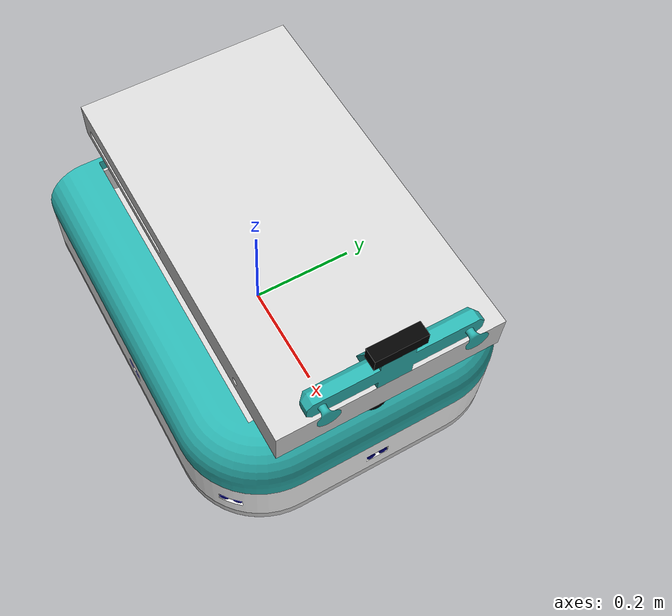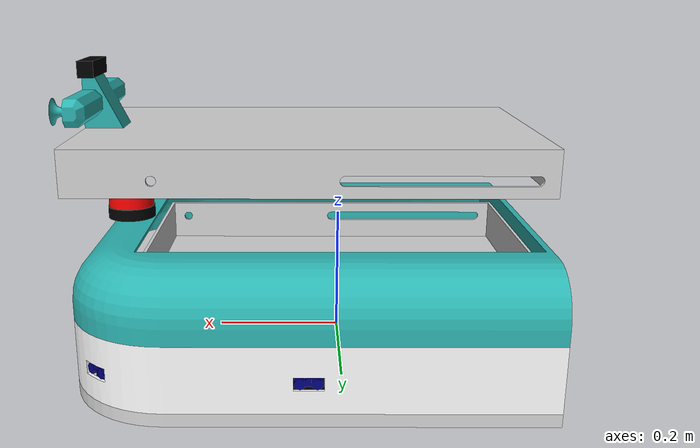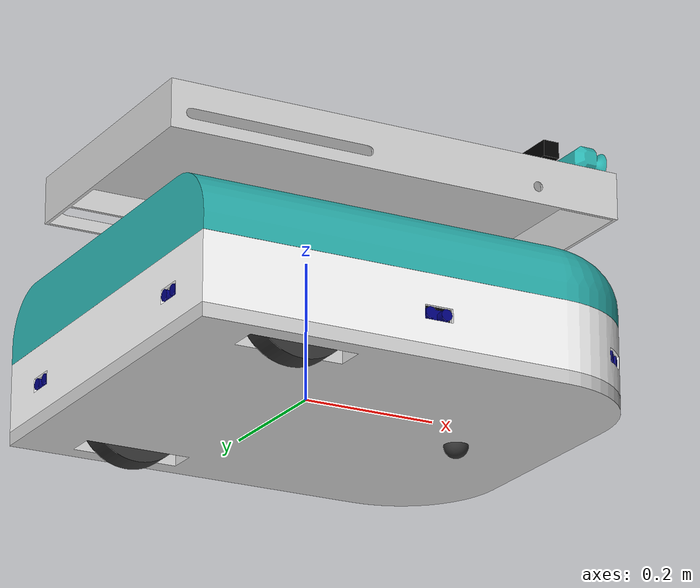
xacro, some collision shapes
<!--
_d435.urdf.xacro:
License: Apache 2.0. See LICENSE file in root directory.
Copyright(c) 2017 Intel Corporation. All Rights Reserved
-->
<?xml version="1.0" ?>

<robot name="warehousebot" xmlns:xacro="http://www.ros.org/wiki/xacro">

  <xacro:include filename="$(find warehouse_bot)/urdf/materials.xacro"/>
  <xacro:include filename="$(find warehouse_bot)/urdf/macros.xacro"/>
  <xacro:include filename="$(find warehouse_bot)/gazebo/whbot_materials.gazebo"/>
  <xacro:include filename="$(find warehouse_bot)/gazebo/whbot_plugins.gazebo"/>
  <xacro:include filename="$(find warehouse_bot)/gazebo/whbot_physics.gazebo"/>
  <xacro:include filename="$(find warehouse_bot)/urdf/_d435.urdf.xacro" />

  <!--______________ROBOT BASE_________________-->

  <link name="base_link">
    <inertial>
      <origin rpy="0 0 0" xyz="0.04802943179493546 0.0204222735414395 -0.0018642017097094744"/>
      <mass value="2.577906496605261"/>
      <inertia ixx="0.811023" ixy="-0.0" ixz="0.001212" iyy="0.962104" iyz="-0.0" izz="1.748359"/>
    </inertial>
    <visual>
      <origin rpy="0 0 0" xyz="0 0 0"/>
      <geometry>
        <mesh filename="package://warehouse_bot/meshes/base_link_m-binary.stl"/>
      </geometry>
      <material name="silver"/>
    </visual>
    <collision>
      <origin rpy="0 0 0" xyz="0 0 0"/>
      <geometry>
        <mesh filename="package://warehouse_bot/meshes/base_link_m-binary.stl"/>
      </geometry>
    </collision>
  </link>

  <link name="motor_r">
    <inertial>
      <origin rpy="0 0 0" xyz="-0.05747388560706437 0.07451598591922264 -2.7354145803321073e-07"/>
      <mass value="4.26377"/>
      <inertia ixx="0.039281" ixy="0.010046" ixz="0.0" iyy="0.01917" iyz="-0.0" izz="0.050241"/>
    </inertial>
    <visual>
      <origin rpy="0 0 0" xyz="0.135192 0.184578 -0.037678"/>
      <geometry>
        <mesh filename="package://warehouse_bot/meshes/motor_r_1_m-binary.stl"/>
      </geometry>
      <material name="black"/>
    </visual>
    <collision>
      <origin rpy="0 0 0" xyz="0.135192 0.184578 -0.037678"/>
      <geometry>
        <mesh filename="package://warehouse_bot/meshes/motor_r_1_m-binary.stl"/>
      </geometry>
    </collision>
  </link>

  <link name="motor_l">
    <inertial>
      <origin rpy="0 0 0" xyz="-0.05747388560706437 -0.07451543883628794 -2.735414578319828e-07"/>
      <mass value="4.26377"/>
      <inertia ixx="0.039281" ixy="-0.010046" ixz="0.0" iyy="0.01917" iyz="0.0" izz="0.050241"/>
    </inertial>
    <visual>
      <origin rpy="0 0 0" xyz="0.135192 -0.225422 -0.037678"/>
      <geometry>
        <mesh filename="package://warehouse_bot/meshes/motor_l_1_m-binary.stl"/>
      </geometry>
      <material name="black"/>
    </visual>
    <collision>
      <origin rpy="0 0 0" xyz="0.135192 -0.225422 -0.037678"/>
      <geometry>
        <mesh filename="package://warehouse_bot/meshes/motor_l_1_m-binary.stl"/>
      </geometry>
    </collision>
  </link>

  <link name="wheel_r">
    <inertial>
      <origin rpy="0 0 0" xyz="-1.5737411374061594e-14 0.019050270486729 -2.73541461350002e-07"/>
      <mass value="0.7251890398888428"/>
      <inertia ixx="0.001157" ixy="-0.0" ixz="0.0" iyy="0.002138" iyz="0.0" izz="0.001157"/>
    </inertial>
    <visual>
      <origin rpy="0 0 0" xyz="0.135192 0.244776 -0.037678"/>
      <geometry>
        <mesh filename="package://warehouse_bot/meshes/wheel_r_1_m-binary.stl"/>
      </geometry>
      <material name="darkgrey"/>
    </visual>
    <collision>
      <origin rpy="0 0 0" xyz="0.135192 0.244776 -0.037678"/>
      <geometry>
        <mesh filename="package://warehouse_bot/meshes/wheel_r_1_m-binary.stl"/>
      </geometry>
    </collision>
  </link>

  <link name="wheel_l">
    <inertial>
      <origin rpy="0 0 0" xyz="-1.5792922525292852e-14 -0.01904972340379335 -2.7354146084346276e-07"/>
      <mass value="0.7251890398888428"/>
      <inertia ixx="0.001157" ixy="-0.0" ixz="0.0" iyy="0.002138" iyz="-0.0" izz="0.001157"/>
    </inertial>
    <visual>
      <origin rpy="0 0 0" xyz="0.135192 -0.28562 -0.037678"/>
      <geometry>
        <mesh filename="package://warehouse_bot/meshes/wheel_l_1_m-binary.stl"/>
      </geometry>
      <material name="darkgrey"/>
    </visual>
    <collision>
      <origin rpy="0 0 0" xyz="0.135192 -0.28562 -0.037678"/>
      <geometry>
        <mesh filename="package://warehouse_bot/meshes/wheel_l_1_m-binary.stl"/>
      </geometry>
    </collision>
  </link>

  <link name="caster">
    <inertial>
      <origin rpy="0 0 0" xyz="-2.220446049250313e-16 2.7354146808419855e-07 -0.0067502735414599856"/>
      <mass value="0.0958839210616834"/>
      <inertia ixx="8e-06" ixy="0.0" ixz="-0.0" iyy="8e-06" iyz="-0.0" izz="1.2e-05"/>
    </inertial>
    <visual>
      <origin rpy="0 0 0" xyz="-0.25 -0.020422 0.020422"/>
      <geometry>
        <mesh filename="package://warehouse_bot/meshes/caster_1_m-binary.stl"/>
      </geometry>
      <material name="darkgrey"/>
    </visual>
    <collision>
      <origin rpy="0 0 0" xyz="-0.25 -0.020422 0.020422"/>
      <geometry>
        <mesh filename="package://warehouse_bot/meshes/caster_1_m-binary.stl"/>
      </geometry>
      <surface>
        <friction>
          <ode>
            <mu>0</mu>
            <mu2>0</mu2>
            <slip1>1.0</slip1>
            <slip2>1.0</slip2>
          </ode>
        </friction>
      </surface>
    </collision>
  </link>

  <!--__________________LIDAR_____________________-->

  <link name="lidar_base">
    <inertial>
      <origin rpy="0 0 0" xyz="-2.0857979859956188e-07 1.9886269344432383e-07 0.009299726417219933"/>
      <mass value="0.08871268038654458"/>
      <inertia ixx="3.4e-05" ixy="0.0" ixz="0.0" iyy="3.4e-05" iyz="-0.0" izz="6.4e-05"/>
    </inertial>
    <visual>
      <origin rpy="0 0 0" xyz="-0.410014 -0.021582 -0.199578"/>
      <geometry>
        <mesh filename="package://warehouse_bot/meshes/lidar_base_1_m-binary.stl"/>
      </geometry>
      <material name="black"/>
    </visual>
    <collision>
      <origin rpy="0 0 0" xyz="-0.410014 -0.021582 -0.199578"/>
      <geometry>
        <mesh filename="package://warehouse_bot/meshes/lidar_base_1_m-binary.stl"/>
      </geometry>
    </collision>
  </link>

  <link name="lidar_sensor">
    <inertial>
      <origin rpy="0 0 0" xyz="-0.0013828885405228197 -6.096293372719053e-07 0.010964227891944844"/>
      <mass value="0.08969617484626062"/>
      <inertia ixx="3.5e-05" ixy="0.0" ixz="0.0" iyy="3.2e-05" iyz="-0.0" izz="5.9e-05"/>
    </inertial>
    <visual>
      <origin rpy="0 0 0" xyz="-0.410014 -0.021582 -0.218178"/>
      <geometry>
        <mesh filename="package://warehouse_bot/meshes/lidar_sensor_1_m-binary.stl"/>
      </geometry>
      <material name="red"/>
    </visual>
    <collision>
      <origin rpy="0 0 0" xyz="-0.410014 -0.021582 -0.218178"/>
      <geometry>
        <mesh filename="package://warehouse_bot/meshes/lidar_sensor_1_m-binary.stl"/>
      </geometry>
    </collision>
  </link>

  <!--______________ROBOT INCLUSION_________________-->

  <link name="upperplate">
    <inertial>
      <origin rpy="0 0 0" xyz="-0.0004020188441992423 2.735414647986323e-07 0.009999726458540192"/>
      <mass value="2.071850360962658"/>
      <inertia ixx="1.618443" ixy="-0.0" ixz="0.0" iyy="2.315952" iyz="-0.0" izz="3.930379"/>
    </inertial>
    <visual>
      <origin rpy="0 0 0" xyz="-0.05 -0.020422 -0.079578"/>
      <geometry>
        <mesh filename="package://warehouse_bot/meshes/upperplate_1_m-binary.stl"/>
      </geometry>
      <material name="silver"/>
    </visual>
    <collision>
      <origin rpy="0 0 0" xyz="-0.05 -0.020422 -0.079578"/>
      <geometry>
        <mesh filename="package://warehouse_bot/meshes/upperplate_1_m-binary.stl"/>
      </geometry>
    </collision>
  </link>

  <link name="topcover">
    <inertial>
      <origin rpy="0 0 0" xyz="-0.3504192366865849 -0.00020454098057712602 0.06277149895637299"/>
      <mass value="0.85424731700951"/>
      <inertia ixx="0.098734" ixy="-1.3e-05" ixz="-0.000661" iyy="0.120567" iyz="-0.0" izz="0.215625"/>
    </inertial>
    <visual>
      <origin rpy="0 0 0" xyz="-0.465014 -0.021614 -0.099578"/>
      <geometry>
        <mesh filename="package://warehouse_bot/meshes/topcover_1_m-binary.stl"/>
      </geometry>
      <material name="technogreen"/>
    </visual>
    <collision>
      <origin rpy="0 0 0" xyz="-0.465014 -0.021614 -0.099578"/>
      <geometry>
        <mesh filename="package://warehouse_bot/meshes/topcover_1_m-binary.stl"/>
      </geometry>
    </collision>
  </link>

  <link name="sidecover">
    <inertial>
      <origin rpy="0 0 0" xyz="-0.36558254155802533 2.735414929254387e-07 -0.0498743241531603"/>
      <mass value="0.6683445613539936"/>
      <inertia ixx="0.076275" ixy="-0.0" ixz="-9e-06" iyy="0.094733" iyz="-0.0" izz="0.168844"/>
    </inertial>
    <visual>
      <origin rpy="0 0 0" xyz="-0.395 -0.020422 -0.099578"/>
      <geometry>
        <mesh filename="package://warehouse_bot/meshes/sidecover_1_m-binary.stl"/>
      </geometry>
      <material name="white"/>
    </visual>
    <collision>
      <origin rpy="0 0 0" xyz="-0.395 -0.020422 -0.099578"/>
      <geometry>
        <mesh filename="package://warehouse_bot/meshes/sidecover_1_m-binary.stl"/>
      </geometry>
    </collision>
  </link>

  <!--______________SCISSOR LIFT_________________-->

  <link name="scissorbase">
    <inertial>
      <origin rpy="0 0 0" xyz="0.002905674640930639 2.0141302827549057e-06 0.013971079069208539"/>
      <mass value="0.48585574122343695"/>
      <inertia ixx="0.090202" ixy="-5.7e-05" ixz="-0.000441" iyy="0.188034" iyz="-0.0" izz="0.274459"/>
    </inertial>
    <visual>
      <origin rpy="0 0 0" xyz="-0.075014 -0.021386 -0.099578"/>
      <geometry>
        <mesh filename="package://warehouse_bot/meshes/scissorbase_1_m-binary.stl"/>
      </geometry>
      <material name="silver"/>
    </visual>
    <collision>
      <origin rpy="0 0 0" xyz="-0.075014 -0.021386 -0.099578"/>
      <geometry>
        <mesh filename="package://warehouse_bot/meshes/scissorbase_1_m-binary.stl"/>
      </geometry>
    </collision>
  </link>

  <link name="scissortop">
    <inertial>
      <origin rpy="0 0 0" xyz="0.0035991491474214737 1.7322508508998968e-06 -0.013601114655512503"/>
      <mass value="0.5574057411325024"/>
      <inertia ixx="0.104478" ixy="-0.000105" ixz="0.000634" iyy="0.284321" iyz="0.0" izz="0.384562"/>
    </inertial>
    <visual>
      <origin rpy="0 0 0" xyz="-0.120014 -0.021413 -0.349578"/>
      <geometry>
        <mesh filename="package://warehouse_bot/meshes/scissortop_1_m-binary.stl"/>
      </geometry>
      <material name="silver"/>
    </visual>
    <collision>
      <origin rpy="0 0 0" xyz="-0.120014 -0.021413 -0.349578"/>
      <geometry>
        <mesh filename="package://warehouse_bot/meshes/scissortop_1_m-binary.stl"/>
      </geometry>
    </collision>
  </link>

  <link name="suction">
    <inertial>
      <origin rpy="0 0 0" xyz="0.013594525081141007 7.4638566614944335e-06 0.03721640455714065"/>
      <mass value="0.12416817650772736"/>
      <inertia ixx="0.007177" ixy="4e-06" ixz="-8.2e-05" iyy="0.000547" iyz="-0.0" izz="0.007025"/>
    </inertial>
    <visual>
      <origin rpy="0 0 0" xyz="0.199986 -0.021226 -0.349578"/>
      <geometry>
        <mesh filename="package://warehouse_bot/meshes/suction_1_m-binary.stl"/>
      </geometry>
      <material name="technogreen"/>
    </visual>
    <collision>
      <origin rpy="0 0 0" xyz="0.199986 -0.021226 -0.349578"/>
      <geometry>
        <mesh filename="package://warehouse_bot/meshes/suction_1_m-binary.stl"/>
      </geometry>
    </collision>
  </link>

  <!--___________________REALSENSE______________________-->

  <sensor_d435 parent="suction">
    <origin xyz="0.02 1.1e-05 0.08" rpy="0 0 0"/>
  </sensor_d435>

  <!--______________ULTRASONIC SENSORS_________________-->

  <link name="ultrasonic_front">
    <inertial>
      <origin rpy="0 0 0" xyz="0.006809983344012227 2.735173125142931e-07 -2.731501565073069e-07"/>
      <mass value="0.007121792624658381"/>
      <inertia ixx="1e-06" ixy="0.0" ixz="-0.0" iyy="0.0" iyz="-0.0" izz="1e-06"/>
    </inertial>
    <visual>
      <origin rpy="0 0 0" xyz="-0.385 -0.020422 -0.044578"/>
      <geometry>
        <mesh filename="package://warehouse_bot/meshes/ultrasonic_front_1_m-binary.stl"/>
      </geometry>
      <material name="blue"/>
    </visual>
    <collision>
      <origin rpy="0 0 0" xyz="-0.385 -0.020422 -0.044578"/>
      <geometry>
        <mesh filename="package://warehouse_bot/meshes/ultrasonic_front_1_m-binary.stl"/>
      </geometry>
    </collision>
  </link>

  <link name="ultrasonic_front_l">
    <inertial>
      <origin rpy="0 0 0" xyz="0.004815220184230751 0.004815493691536277 -2.7315014937412396e-07"/>
      <mass value="0.007121792624658381"/>
      <inertia ixx="1e-06" ixy="0.0" ixz="-0.0" iyy="1e-06" iyz="-0.0" izz="1e-06"/>
    </inertial>
    <visual>
      <origin rpy="0 0 0" xyz="-0.338839 -0.269261 -0.044578"/>
      <geometry>
        <mesh filename="package://warehouse_bot/meshes/ultrasonic_front_l_1_m-binary.stl"/>
      </geometry>
      <material name="blue"/>
    </visual>
    <collision>
      <origin rpy="0 0 0" xyz="-0.338839 -0.269261 -0.044578"/>
      <geometry>
        <mesh filename="package://warehouse_bot/meshes/ultrasonic_front_l_1_m-binary.stl"/>
      </geometry>
    </collision>
  </link>

  <link name="ultrasonic_mid_l">
    <inertial>
      <origin rpy="0 0 0" xyz="2.4155198674602474e-11 0.006810256885478538 -2.7315014824308426e-07"/>
      <mass value="0.0071217926246584145"/>
      <inertia ixx="0.0" ixy="-0.0" ixz="0.0" iyy="1e-06" iyz="-0.0" izz="1e-06"/>
    </inertial>
    <visual>
      <origin rpy="0 0 0" xyz="-0.05 -0.305422 -0.044578"/>
      <geometry>
        <mesh filename="package://warehouse_bot/meshes/ultrasonic_mid_l_1_m-binary.stl"/>
      </geometry>
      <material name="blue"/>
    </visual>
    <collision>
      <origin rpy="0 0 0" xyz="-0.05 -0.305422 -0.044578"/>
      <geometry>
        <mesh filename="package://warehouse_bot/meshes/ultrasonic_mid_l_1_m-binary.stl"/>
      </geometry>
    </collision>
  </link>

  <link name="ultrasonic_back_l">
    <inertial>
      <origin rpy="0 0 0" xyz="-0.006809983344012394 2.735656213226356e-07 -2.731501509006806e-07"/>
      <mass value="0.0071217926246584145"/>
      <inertia ixx="1e-06" ixy="0.0" ixz="0.0" iyy="0.0" iyz="-0.0" izz="1e-06"/>
    </inertial>
    <visual>
      <origin rpy="0 0 0" xyz="0.285 -0.220422 -0.044578"/>
      <geometry>
        <mesh filename="package://warehouse_bot/meshes/ultrasonic_back_l_1_m-binary.stl"/>
      </geometry>
      <material name="blue"/>
    </visual>
    <collision>
      <origin rpy="0 0 0" xyz="0.285 -0.220422 -0.044578"/>
      <geometry>
        <mesh filename="package://warehouse_bot/meshes/ultrasonic_back_l_1_m-binary.stl"/>
      </geometry>
    </collision>
  </link>

  <link name="ultrasonic_front_r">
    <inertial>
      <origin rpy="0 0 0" xyz="0.004815220184230029 -0.004814946608603571 -2.731501634253841e-07"/>
      <mass value="0.007121792624658381"/>
      <inertia ixx="1e-06" ixy="-0.0" ixz="-0.0" iyy="1e-06" iyz="0.0" izz="1e-06"/>
    </inertial>
    <visual>
      <origin rpy="0 0 0" xyz="-0.338839 0.228417 -0.044578"/>
      <geometry>
        <mesh filename="package://warehouse_bot/meshes/ultrasonic_front_r_1_m-binary.stl"/>
      </geometry>
      <material name="blue"/>
    </visual>
    <collision>
      <origin rpy="0 0 0" xyz="-0.338839 0.228417 -0.044578"/>
      <geometry>
        <mesh filename="package://warehouse_bot/meshes/ultrasonic_front_r_1_m-binary.stl"/>
      </geometry>
    </collision>
  </link>

  <link name="ultrasonic_mid_r">
    <inertial>
      <origin rpy="0 0 0" xyz="2.415526112464761e-11 -0.006809709802546637 -2.73150164611935e-07"/>
      <mass value="0.0071217926246584145"/>
      <inertia ixx="0.0" ixy="0.0" ixz="-0.0" iyy="1e-06" iyz="0.0" izz="1e-06"/>
    </inertial>
    <visual>
      <origin rpy="0 0 0" xyz="-0.05 0.264578 -0.044578"/>
      <geometry>
        <mesh filename="package://warehouse_bot/meshes/ultrasonic_mid_r_1_m-binary.stl"/>
      </geometry>
      <material name="blue"/>
    </visual>
    <collision>
      <origin rpy="0 0 0" xyz="-0.05 0.264578 -0.044578"/>
      <geometry>
        <mesh filename="package://warehouse_bot/meshes/ultrasonic_mid_r_1_m-binary.stl"/>
      </geometry>
    </collision>
  </link>

  <link name="ultrasonic_back_r">
    <inertial>
      <origin rpy="0 0 0" xyz="-0.0068099833440122826 2.7351731041180827e-07 -2.7315016193352193e-07"/>
      <mass value="0.0071217926246584145"/>
      <inertia ixx="1e-06" ixy="-0.0" ixz="0.0" iyy="0.0" iyz="-0.0" izz="1e-06"/>
    </inertial>
    <visual>
      <origin rpy="0 0 0" xyz="0.285 0.179578 -0.044578"/>
      <geometry>
        <mesh filename="package://warehouse_bot/meshes/ultrasonic_back_r_1_m-binary.stl"/>
      </geometry>
      <material name="blue"/>
    </visual>
    <collision>
      <origin rpy="0 0 0" xyz="0.285 0.179578 -0.044578"/>
      <geometry>
        <mesh filename="package://warehouse_bot/meshes/ultrasonic_back_r_1_m-binary.stl"/>
      </geometry>
    </collision>
  </link>

  <!--______________ULTRASONIC BRACKETS_________________-->

  <link name="usbracket_front">
    <inertial>
      <origin rpy="0 0 0" xyz="0.006325757575757596 2.735414678517456e-07 0.0220830597918734"/>
      <mass value="0.02332"/>
      <inertia ixx="1.4e-05" ixy="-0.0" ixz="-2e-06" iyy="9e-06" iyz="-0.0" izz="6e-06"/>
    </inertial>
    <visual>
      <origin rpy="0 0 0" xyz="-0.3725 -0.020422 0.000422"/>
      <geometry>
        <mesh filename="package://warehouse_bot/meshes/usbracket_front_1_m-binary.stl"/>
      </geometry>
      <material name="black"/>
    </visual>
    <collision>
      <origin rpy="0 0 0" xyz="-0.3725 -0.020422 0.000422"/>
      <geometry>
        <mesh filename="package://warehouse_bot/meshes/usbracket_front_1_m-binary.stl"/>
      </geometry>
    </collision>
  </link>

  <link name="usbracket_front_l">
    <inertial>
      <origin rpy="0 0 0" xyz="0.004472986077960317 0.004473259619427239 0.022083059791880213"/>
      <mass value="0.02332"/>
      <inertia ixx="1.1e-05" ixy="2e-06" ixz="-1e-06" iyy="1.1e-05" iyz="-1e-06" izz="6e-06"/>
    </inertial>
    <visual>
      <origin rpy="0 0 0" xyz="-0.33 -0.260422 0.000422"/>
      <geometry>
        <mesh filename="package://warehouse_bot/meshes/usbracket_front_l_1_m-binary.stl"/>
      </geometry>
      <material name="blue"/>
    </visual>
    <collision>
      <origin rpy="0 0 0" xyz="-0.33 -0.260422 0.000422"/>
      <geometry>
        <mesh filename="package://warehouse_bot/meshes/usbracket_front_l_1_m-binary.stl"/>
      </geometry>
    </collision>
  </link>

  <link name="usbracket_mid_l">
    <inertial>
      <origin rpy="0 0 0" xyz="-1.1796119636642288e-16 0.006326031117224684 0.022083059791881295"/>
      <mass value="0.02332"/>
      <inertia ixx="9e-06" ixy="0.0" ixz="0.0" iyy="1.4e-05" iyz="-2e-06" izz="6e-06"/>
    </inertial>
    <visual>
      <origin rpy="0 0 0" xyz="-0.05 -0.292922 0.000422"/>
      <geometry>
        <mesh filename="package://warehouse_bot/meshes/usbracket_mid_l_1_m-binary.stl"/>
      </geometry>
      <material name="black"/>
    </visual>
    <collision>
      <origin rpy="0 0 0" xyz="-0.05 -0.292922 0.000422"/>
      <geometry>
        <mesh filename="package://warehouse_bot/meshes/usbracket_mid_l_1_m-binary.stl"/>
      </geometry>
    </collision>
  </link>

  <link name="usbracket_back_l">
    <inertial>
      <origin rpy="0 0 0" xyz="-0.006325757575757651 2.7354146689417824e-07 0.02208305979187899"/>
      <mass value="0.02332"/>
      <inertia ixx="1.4e-05" ixy="-0.0" ixz="2e-06" iyy="9e-06" iyz="0.0" izz="6e-06"/>
    </inertial>
    <visual>
      <origin rpy="0 0 0" xyz="0.2725 -0.220422 0.000422"/>
      <geometry>
        <mesh filename="package://warehouse_bot/meshes/usbracket_back_l_1_m-binary.stl"/>
      </geometry>
      <material name="black"/>
    </visual>
    <collision>
      <origin rpy="0 0 0" xyz="0.2725 -0.220422 0.000422"/>
      <geometry>
        <mesh filename="package://warehouse_bot/meshes/usbracket_back_l_1_m-binary.stl"/>
      </geometry>
    </collision>
  </link>

  <link name="usbracket_front_r">
    <inertial>
      <origin rpy="0 0 0" xyz="0.004472986077959984 -0.004472712536493423 0.022083059791866772"/>
      <mass value="0.02332"/>
      <inertia ixx="1.1e-05" ixy="-2e-06" ixz="-1e-06" iyy="1.1e-05" iyz="1e-06" izz="6e-06"/>
    </inertial>
    <visual>
      <origin rpy="0 0 0" xyz="-0.33 0.219578 0.000422"/>
      <geometry>
        <mesh filename="package://warehouse_bot/meshes/usbracket_front_r_1_m-binary.stl"/>
      </geometry>
      <material name="black"/>
    </visual>
    <collision>
      <origin rpy="0 0 0" xyz="-0.33 0.219578 0.000422"/>
      <geometry>
        <mesh filename="package://warehouse_bot/meshes/usbracket_front_r_1_m-binary.stl"/>
      </geometry>
    </collision>
  </link>

  <link name="usbracket_mid_r">
    <inertial>
      <origin rpy="0 0 0" xyz="-4.85722573273506e-17 -0.006325484034291284 0.022083059791865638"/>
      <mass value="0.02332"/>
      <inertia ixx="9e-06" ixy="0.0" ixz="-0.0" iyy="1.4e-05" iyz="2e-06" izz="6e-06"/>
    </inertial>
    <visual>
      <origin rpy="0 0 0" xyz="-0.05 0.252078 0.000422"/>
      <geometry>
        <mesh filename="package://warehouse_bot/meshes/usbracket_mid_r_1_m-binary.stl"/>
      </geometry>
      <material name="black"/>
    </visual>
    <collision>
      <origin rpy="0 0 0" xyz="-0.05 0.252078 0.000422"/>
      <geometry>
        <mesh filename="package://warehouse_bot/meshes/usbracket_mid_r_1_m-binary.stl"/>
      </geometry>
    </collision>
  </link>

  <link name="usbracket_back_r">
    <inertial>
      <origin rpy="0 0 0" xyz="-0.006325757575757651 2.735414667276448e-07 0.022083059791867945"/>
      <mass value="0.02332"/>
      <inertia ixx="1.4e-05" ixy="0.0" ixz="2e-06" iyy="9e-06" iyz="0.0" izz="6e-06"/>
    </inertial>
    <visual>
      <origin rpy="0 0 0" xyz="0.2725 0.179578 0.000422"/>
      <geometry>
        <mesh filename="package://warehouse_bot/meshes/usbracket_back_r_1_m-binary.stl"/>
      </geometry>
      <material name="black"/>
    </visual>
    <collision>
      <origin rpy="0 0 0" xyz="0.2725 0.179578 0.000422"/>
      <geometry>
        <mesh filename="package://warehouse_bot/meshes/usbracket_back_r_1_m-binary.stl"/>
      </geometry>
    </collision>
  </link>

  <!--___________________JOINTS______________________-->

  <joint name="motorr_baselink" type="fixed">
    <origin rpy="0 0 0" xyz="-0.135192 -0.184578 0.037678"/>
    <parent link="base_link"/>
    <child link="motor_r"/>
  </joint>

  <joint name="motorl_baselink" type="fixed">
    <origin rpy="0 0 0" xyz="-0.135192 0.225422 0.037678"/>
    <parent link="base_link"/>
    <child link="motor_l"/>
  </joint>

  <joint name="motor_r" type="continuous">
    <origin rpy="0 0 0" xyz="0.0 -0.060198 0.0"/>
    <parent link="motor_r"/>
    <child link="wheel_r"/>
    <axis xyz="0.0 0.01 -0.0"/>
    <joint_properties damping="1.0" friction="1.0"/>
  </joint>

  <joint name="motor_l" type="continuous">
    <origin rpy="0 0 0" xyz="0.0 0.060198 0.0"/>
    <parent link="motor_l"/>
    <child link="wheel_l"/>
    <axis xyz="0.0 0.01 -0.0"/>
    <joint_properties damping="1.0" friction="1.0"/>
  </joint>

  <joint name="caseter_baselink" type="fixed">
    <origin rpy="0 0 0" xyz="0.25 0.020422 -0.020422"/>
    <parent link="base_link"/>
    <child link="caster"/>
  </joint>

  <joint name="upperplate_baselink" type="fixed">
    <origin rpy="0 0 0" xyz="0.05 0.020422 0.079578"/>
    <parent link="base_link"/>
    <child link="upperplate"/>
  </joint>

  <joint name="topcover_upperplate" type="fixed">
    <origin rpy="0 0 0" xyz="0.345 0.0 0.02"/>
    <parent link="upperplate"/>
    <child link="topcover"/>
  </joint>

  <joint name="lidar_internal" type="fixed">
    <origin rpy="0 0 0" xyz="0.0 0.0 0.0186"/>
    <parent link="lidar_base"/>
    <child link="lidar_sensor"/>
  </joint>

  <joint name="lidar_topcover" type="fixed">
    <origin rpy="0 0 0" xyz="-0.055 -3.2e-05 0.1"/>
    <parent link="topcover"/>
    <child link="lidar_base"/>
  </joint>

  <joint name="usjointfront" type="fixed">
    <origin rpy="0 0 0" xyz="0.0125 0.0 0.045"/>
    <parent link="usbracket_front"/>
    <child link="ultrasonic_front"/>
  </joint>

  <joint name="usjointfront_baselink" type="fixed">
    <origin rpy="0 0 0" xyz="0.3725 0.020422 -0.000422"/>
    <parent link="base_link"/>
    <child link="usbracket_front"/>
  </joint>

  <joint name="usjointfrontleft" type="fixed">
    <origin rpy="0 0 0" xyz="0.008839 0.008839 0.045"/>
    <parent link="usbracket_front_l"/>
    <child link="ultrasonic_front_l"/>
  </joint>

  <joint name="usjointleft" type="fixed">
    <origin rpy="0 0 0" xyz="0.0 0.0125 0.045"/>
    <parent link="usbracket_mid_l"/>
    <child link="ultrasonic_mid_l"/>
  </joint>

  <joint name="usjointbackleft" type="fixed">
    <origin rpy="0 0 0" xyz="-0.0125 0.0 0.045"/>
    <parent link="usbracket_back_l"/>
    <child link="ultrasonic_back_l"/>
  </joint>

  <joint name="usjointfrontleft_baselink" type="fixed">
    <origin rpy="0 0 0" xyz="0.33 0.260422 -0.000422"/>
    <parent link="base_link"/>
    <child link="usbracket_front_l"/>
  </joint>

  <joint name="usjointleft_baselink" type="fixed">
    <origin rpy="0 0 0" xyz="0.05 0.292922 -0.000422"/>
    <parent link="base_link"/>
    <child link="usbracket_mid_l"/>
  </joint>

  <joint name="usjointbackleft_baselink" type="fixed">
    <origin rpy="0 0 0" xyz="-0.2725 0.220422 -0.000422"/>
    <parent link="base_link"/>
    <child link="usbracket_back_l"/>
  </joint>

  <joint name="sidecover_topcover" type="fixed">
    <origin rpy="0 0 0" xyz="0.0 0.0 0.0"/>
    <parent link="topcover"/>
    <child link="sidecover"/>
  </joint>

  <joint name="usjointbackright" type="fixed">
    <origin rpy="0 0 0" xyz="-0.0125 0.0 0.045"/>
    <parent link="usbracket_back_r"/>
    <child link="ultrasonic_back_r"/>
  </joint>

  <joint name="usjointright" type="fixed">
    <origin rpy="0 0 0" xyz="0.0 -0.0125 0.045"/>
    <parent link="usbracket_mid_r"/>
    <child link="ultrasonic_mid_r"/>
  </joint>

  <joint name="usjointfrontright" type="fixed">
    <origin rpy="0 0 0" xyz="0.008839 -0.008839 0.045"/>
    <parent link="usbracket_front_r"/>
    <child link="ultrasonic_front_r"/>
  </joint>

  <joint name="usjointright_baselink" type="fixed">
    <origin rpy="0 0 0" xyz="0.05 -0.252078 -0.000422"/>
    <parent link="base_link"/>
    <child link="usbracket_mid_r"/>
  </joint>

  <joint name="usjointfrontright_baselink" type="fixed">
    <origin rpy="0 0 0" xyz="0.33 -0.219578 -0.000422"/>
    <parent link="base_link"/>
    <child link="usbracket_front_r"/>
  </joint>

  <joint name="usjointbackright_baselink" type="fixed">
    <origin rpy="0 0 0" xyz="-0.2725 -0.179578 -0.000422"/>
    <parent link="base_link"/>
    <child link="usbracket_back_r"/>
  </joint>

  <joint name="scissorbottomplate_baselink" type="fixed">
    <origin rpy="0 0 0" xyz="-0.045 -2.7e-05 0.02"/>
    <parent link="upperplate"/>
    <child link="scissorbase"/>
  </joint>

  s

  <!--Please do not delete the below commented code. It will be used when we move the Scissorlift Mechanism-->

  <joint name="topslider" type="fixed">
    <origin rpy="0 0 0" xyz="0.32 -0.000187 0.0"/>
    <parent link="scissortop"/>
    <child link="suction"/>
    <axis xyz="-1 0 0"/>
    <limit effort="100" lower="0" upper="0.64" velocity="100"/>
  </joint>

  <joint name="scissorlift" type="prismatic">
    <origin rpy="0 0 0" xyz="0.0 0.0 0.27"/>
    <parent link="upperplate"/>
    <child link="scissortop"/>
    <axis xyz="0 0 1"/>
    <limit effort="100" lower="0.0" upper="1.72" velocity="100"/>
  </joint>

</robot>

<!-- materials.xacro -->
<robot>

  <material name="silver">
    <color rgba="0.827 0.827 0.827 1"/>
  </material>

  <material name="black">
    <color rgba="0 0 0 1"/>
  </material>

  <material name="white">
    <color rgba="1 1 1 1"/>
  </material>

  <material name="darkgrey">
    <color rgba="0.2 0.2 0.2 1"/>
  </material>

  <material name="technogreen">
    <color rgba="0.169 0.702 0.69 1"/>
  </material>

  <material name="red">
    <color rgba="1 0 0 1"/>
  </material>

  <material name="blue">
    <color rgba="0 0 0.5 1"/>
  </material>

</robot>

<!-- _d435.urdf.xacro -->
<robot name="sensor_d435" xmlns:xacro="http://ros.org/wiki/xacro">
  <!--File includes-->
  <xacro:include filename="$(find warehouse_bot)/urdf/_d435.gazebo.xacro"/>

  <xacro:macro name="sensor_d435" params="name:=camera topics_ns:=camera parent *origin">
    <xacro:property name="M_PI" value="3.1415926535897931" />

    <!-- The following values are approximate, and the camera node
     publishing TF values with actual calibrated camera extrinsic values -->
    <xacro:property name="d435_cam_depth_to_left_ir_offset" value="0.0"/>
    <xacro:property name="d435_cam_depth_to_right_ir_offset" value="-0.050"/>
    <xacro:property name="d435_cam_depth_to_color_offset" value="0.015"/>

    <!-- The following values model the aluminum peripherial case for the
  	D435 camera, with the camera joint represented by the actual
  	peripherial camera tripod mount -->
    <xacro:property name="d435_cam_width" value="0.090"/>
    <xacro:property name="d435_cam_height" value="0.025"/>
    <xacro:property name="d435_cam_depth" value="0.02505"/>
    <xacro:property name="d435_cam_mount_from_center_offset" value="0.0149"/>

    <!-- The following offset is relative the the physical D435 camera peripherial
  	camera tripod mount -->
    <xacro:property name="d435_cam_depth_px" value="${d435_cam_mount_from_center_offset}"/>
    <xacro:property name="d435_cam_depth_py" value="0.0175"/>
    <xacro:property name="d435_cam_depth_pz" value="${d435_cam_height/2}"/>

    <material name="${name}_aluminum">
	  <color rgba="0 0 0 1"/>
    </material>

    <!-- camera body, with origin at bottom screw mount -->
    <joint name="${name}_joint" type="fixed">
      <xacro:insert_block name="origin" />
      <parent link="${parent}"/>
      <child link="${name}_bottom_screw_frame" />
    </joint>
    <link name="${name}_bottom_screw_frame"/>

    <joint name="${name}_link_joint" type="fixed">
      <origin xyz="0 ${d435_cam_depth_py} ${d435_cam_depth_pz}" rpy="0 0 0"/>
      <parent link="${name}_bottom_screw_frame"/>
      <child link="${name}_link" />
    </joint>

    <link name="${name}_link">
      <visual>
      <origin xyz="${d435_cam_mount_from_center_offset} ${-d435_cam_depth_py} 0" rpy="${M_PI/2} 0 ${M_PI/2}"/>
        <geometry>
          <mesh filename="package://warehouse_bot/meshes/d435.dae" />
        </geometry>
        <material name="${name}_aluminum"/>
      </visual>
      <collision>
        <origin xyz="0 ${-d435_cam_depth_py} 0" rpy="0 0 0"/>
        <geometry>
        <box size="${d435_cam_depth} ${d435_cam_width} ${d435_cam_height}"/>
        </geometry>
      </collision>
      <inertial>
        <!-- The following are not reliable values, and should not be used for modeling -->
        <mass value="0.564" />
        <origin xyz="0 0 0" />
        <inertia ixx="0.003881243" ixy="0.0" ixz="0.0" iyy="0.000498940" iyz="0.0" izz="0.003879257" />
      </inertial>
    </link>

    <!-- camera depth joints and links -->
    <joint name="${name}_depth_joint" type="fixed">
      <origin xyz="0 0 0" rpy="0 0 0"/>
      <parent link="${name}_link"/>
      <child link="${name}_depth_frame" />
    </joint>
    <link name="${name}_depth_frame"/>

    <joint name="${name}_depth_optical_joint" type="fixed">
      <origin xyz="0 0 0" rpy="${-M_PI/2} 0 ${-M_PI/2}" />
      <parent link="${name}_depth_frame" />
      <child link="${name}_depth_optical_frame" />
    </joint>
    <link name="${name}_depth_optical_frame"/>

    <!-- camera left IR joints and links -->
    <joint name="${name}_left_ir_joint" type="fixed">
      <origin xyz="0 ${d435_cam_depth_to_left_ir_offset} 0" rpy="0 0 0" />
      <parent link="${name}_depth_frame" />
      <child link="${name}_left_ir_frame" />
    </joint>
    <link name="${name}_left_ir_frame"/>

    <joint name="${name}_left_ir_optical_joint" type="fixed">
      <origin xyz="0 0 0" rpy="${-M_PI/2} 0 ${-M_PI/2}" />
      <parent link="${name}_left_ir_frame" />
      <child link="${name}_left_ir_optical_frame" />
    </joint>
    <link name="${name}_left_ir_optical_frame"/>

    <!-- camera right IR joints and links -->
    <joint name="${name}_right_ir_joint" type="fixed">
      <origin xyz="0 ${d435_cam_depth_to_right_ir_offset} 0" rpy="0 0 0" />
      <parent link="${name}_depth_frame" />
      <child link="${name}_right_ir_frame" />
    </joint>
    <link name="${name}_right_ir_frame"/>

    <joint name="${name}_right_ir_optical_joint" type="fixed">
      <origin xyz="0 0 0" rpy="${-M_PI/2} 0 ${-M_PI/2}" />
      <parent link="${name}_right_ir_frame" />
      <child link="${name}_right_ir_optical_frame" />
    </joint>
    <link name="${name}_right_ir_optical_frame"/>

    <!-- camera color joints and links -->
    <joint name="${name}_color_joint" type="fixed">
      <origin xyz="0 ${d435_cam_depth_to_color_offset} 0" rpy="0 0 0" />
      <parent link="${name}_depth_frame" />
      <child link="${name}_color_frame" />
    </joint>
    <link name="${name}_color_frame"/>

    <joint name="${name}_color_optical_joint" type="fixed">
      <origin xyz="0 0 0" rpy="${-M_PI/2} 0 ${-M_PI/2}" />
      <parent link="${name}_color_frame" />
      <child link="${name}_color_optical_frame" />
    </joint>
    <link name="${name}_color_optical_frame"/>

    <!-- Realsense Gazebo Plugin -->
    <xacro:gazebo_d435 camera_name="${name}" reference_link="${name}_link" topics_ns="${topics_ns}" depth_optical_frame="${name}_depth_optical_frame" color_optical_frame="${name}_color_optical_frame" infrared1_optical_frame="${name}_left_ir_optical_frame" infrared2_optical_frame="${name}_right_ir_optical_frame"/>

  </xacro:macro>
</robot>
